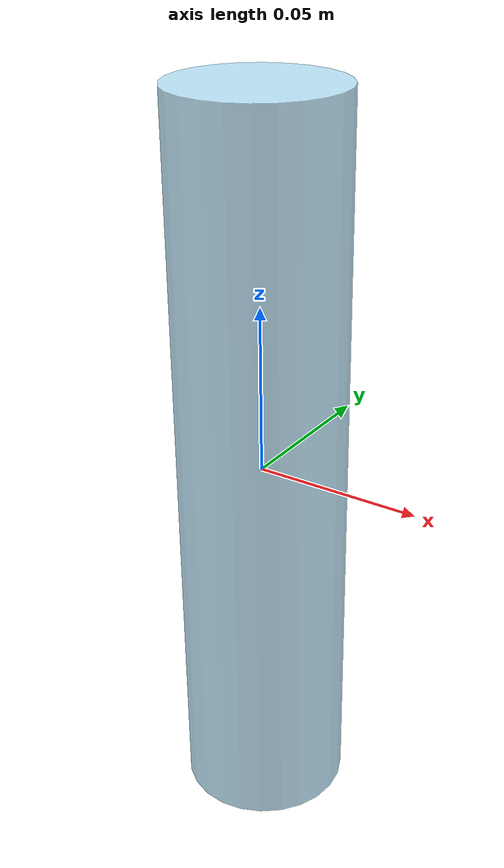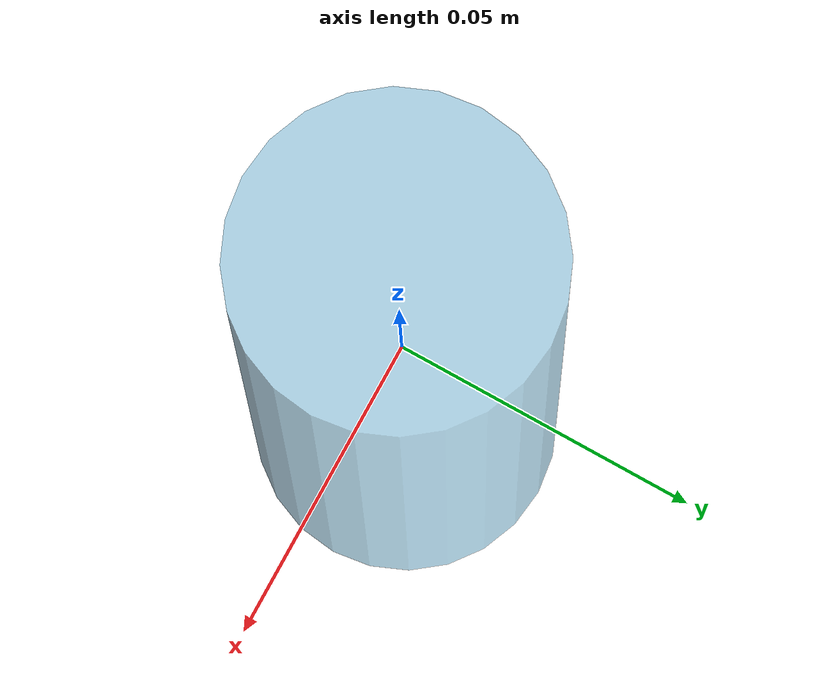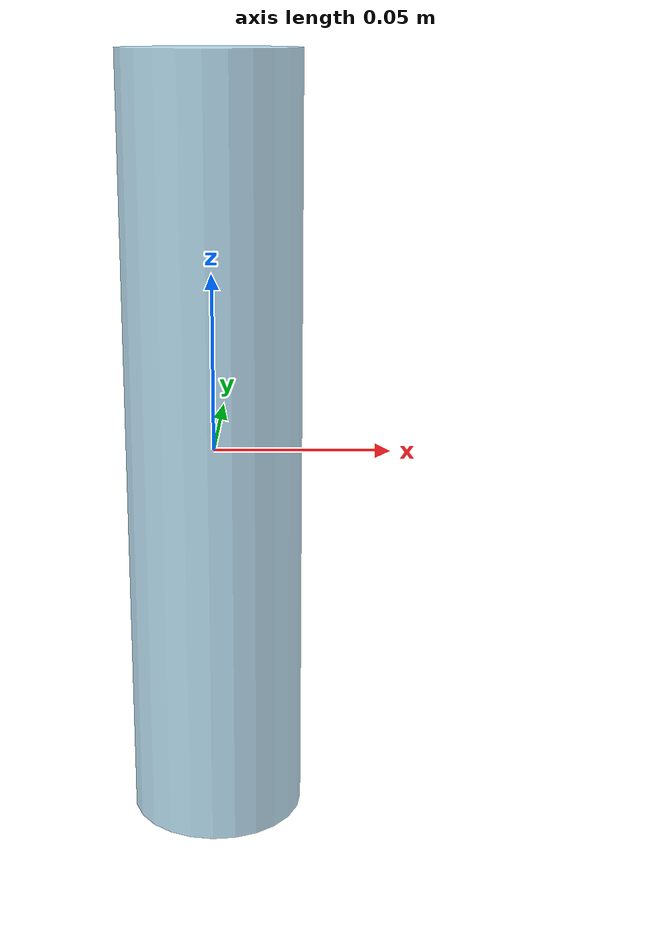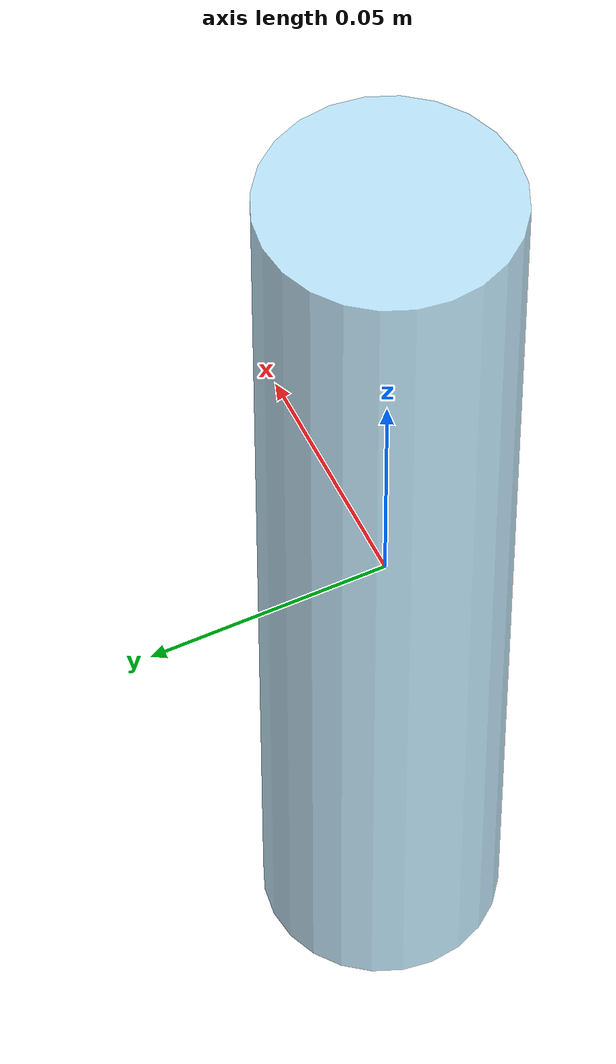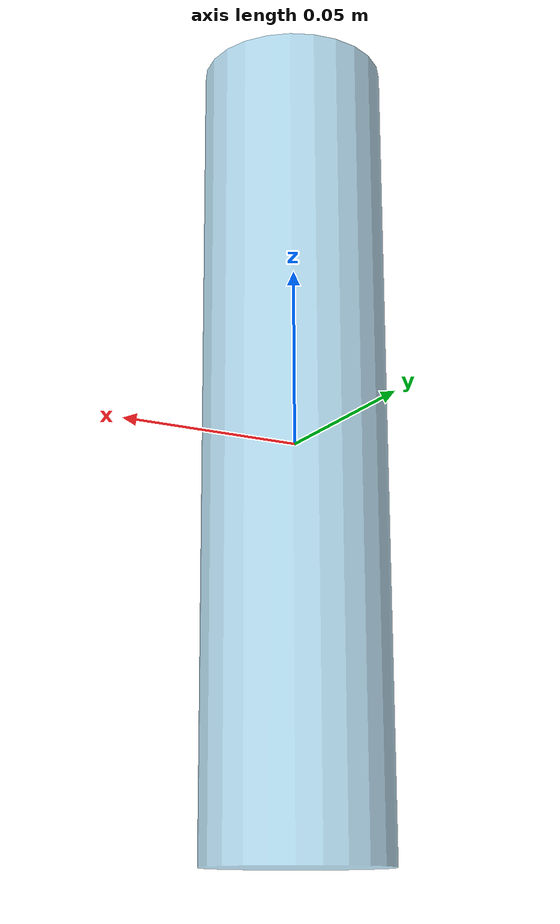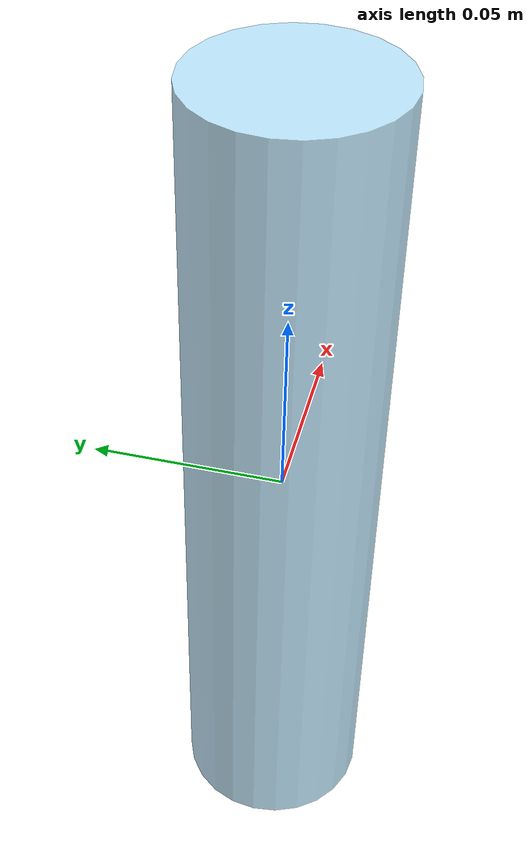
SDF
<?xml version="1.0" ?>
<sdf version="1.5">
  <model name="water_bottle">
    <link name="link">
      <inertial>
        <mass>0.500</mass>
        <!-- cylinder: r=0.025m, h=0.220m -->
        <inertia>
          <ixx>0.002034</ixx><ixy>0</ixy><ixz>0</ixz>
          <iyy>0.002034</iyy><iyz>0</iyz><izz>0.000156</izz>
        </inertia>
      </inertial>
      <collision name="collision">
        <geometry><cylinder><radius>0.025</radius><length>0.220</length></cylinder></geometry>
              <surface>
          <friction>
            <ode>
              <mu>0.5</mu>
              <mu2>0.5</mu2>
            </ode>
            <torsional>
              <coefficient>0.5</coefficient>
              <surface_radius>0.01</surface_radius>
            </torsional>
          </friction>
          <contact>
            <ode>
              <kp>1e6</kp>
              <kd>50</kd>
              <min_depth>0.001</min_depth>
              <max_vel>0.01</max_vel>
            </ode>
          </contact>
        </surface>
      </collision>
      <visual name="visual">
        <geometry><cylinder><radius>0.025</radius><length>0.220</length></cylinder></geometry>
        <material>
          <ambient>0.7 0.9 1.0 0.8</ambient><diffuse>0.7 0.9 1.0 0.8</diffuse>
        </material>
      </visual>
    </link>
  </model>
</sdf>
